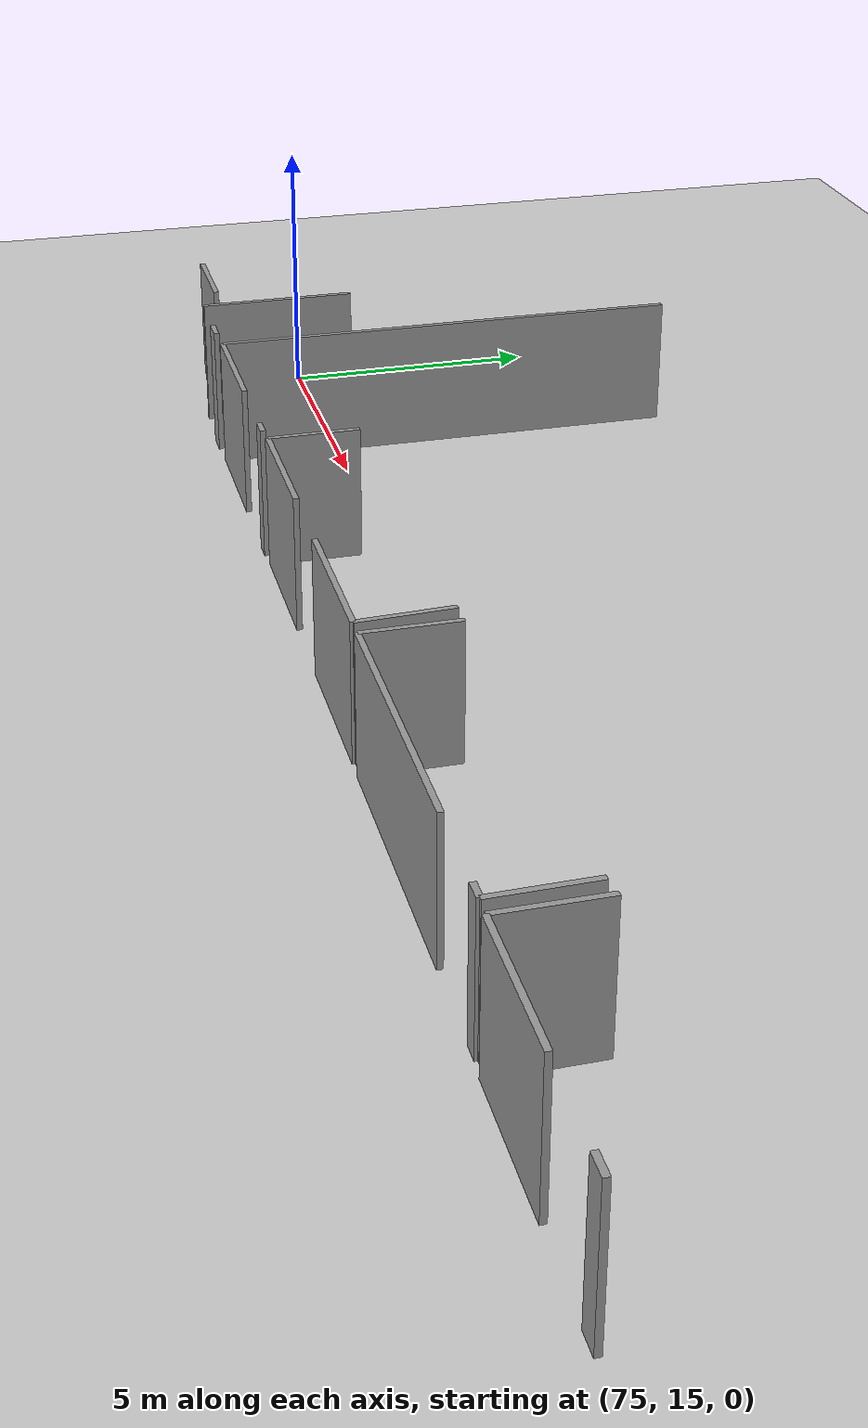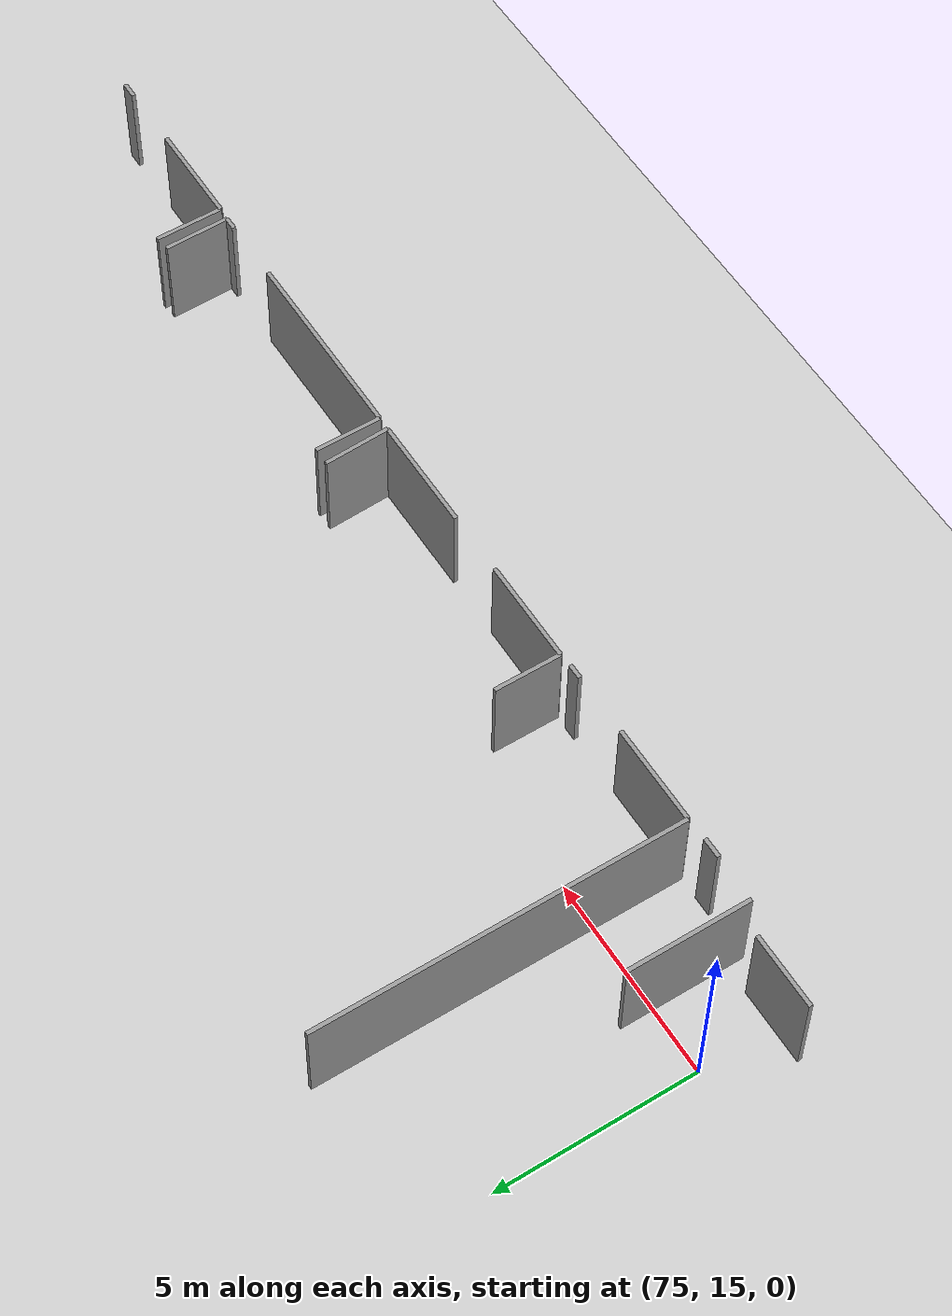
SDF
<sdf version="1.6">
 <world name="default">
  <model name="ground_plane">
   <static>1</static>
   <link name="link">
    <collision name="collision">
     <geometry><plane><normal>0 0 1</normal><size>100 100</size></plane></geometry>
     <surface><friction><ode><mu>100</mu><mu2>50</mu2></ode></friction></surface>
    </collision>
    <visual name="visual">
     <cast_shadows>0</cast_shadows>
     <geometry><plane><normal>0 0 1</normal><size>100 100</size></plane></geometry>
     <material>
      <script><uri>file://media/materials/scripts/gazebo.material</uri><name>Gazebo/Grey</name></script>
     </material>
    </visual>
   </link>
  </model>
  <model name="50010536_PLAN4">
   <static>1</static>
   <link name="Wall_265">
    <collision name="Wall_265_Collision">
     <geometry><box><size>1.84388788369 0.1 2.5</size></box></geometry>
     <pose>0.921943941847 0 1.25 0 0 0</pose>
    </collision>
    <visual name="Wall_265_Visual">
     <pose>0.921943941847 0 1.25 0 0 0</pose>
     <geometry><box><size>1.84388788369 0.1 2.5</size></box></geometry>
     <material>
      <script><uri>file://media/materials/scripts/gazebo.material</uri><name>Gazebo/Grey</name></script>
      <ambient>1 1 1 1</ambient>
     </material>
    </visual>
    <pose>178.473719963 -8.9317461829 0 0 0 3.14159265359</pose>
   </link>
   <link name="Wall_310">
    <collision name="Wall_310_Collision">
     <geometry><box><size>0.363140018411 0.1 2.5</size></box></geometry>
     <pose>0.181570009205 0 1.25 0 0 0</pose>
    </collision>
    <visual name="Wall_310_Visual">
     <pose>0.181570009205 0 1.25 0 0 0</pose>
     <geometry><box><size>0.363140018411 0.1 2.5</size></box></geometry>
     <material>
      <script><uri>file://media/materials/scripts/gazebo.material</uri><name>Gazebo/Grey</name></script>
      <ambient>1 1 1 1</ambient>
     </material>
    </visual>
    <pose>185.777151382 -9.28020823414 0 0 0 3.14159265359</pose>
   </link>
   <link name="Wall_311">
    <collision name="Wall_311_Collision">
     <geometry><box><size>2.47138367774 0.1 2.5</size></box></geometry>
     <pose>1.23569183887 0 1.25 0 0 0</pose>
    </collision>
    <visual name="Wall_311_Visual">
     <pose>1.23569183887 0 1.25 0 0 0</pose>
     <geometry><box><size>2.47138367774 0.1 2.5</size></box></geometry>
     <material>
      <script><uri>file://media/materials/scripts/gazebo.material</uri><name>Gazebo/Grey</name></script>
      <ambient>1 1 1 1</ambient>
     </material>
    </visual>
    <pose>183.875110307 -9.28020823414 0 0 0 3.14159265359</pose>
   </link>
   <link name="Wall_312">
    <collision name="Wall_312_Collision">
     <geometry><box><size>9.08975018252 0.1 2.5</size></box></geometry>
     <pose>4.54487509126 0 1.25 0 0 0</pose>
    </collision>
    <visual name="Wall_312_Visual">
     <pose>4.54487509126 0 1.25 0 0 0</pose>
     <geometry><box><size>9.08975018252 0.1 2.5</size></box></geometry>
     <material>
      <script><uri>file://media/materials/scripts/gazebo.material</uri><name>Gazebo/Grey</name></script>
      <ambient>1 1 1 1</ambient>
     </material>
    </visual>
    <pose>181.403726629 -9.28020823414 0 0 0 1.57079632679</pose>
   </link>
   <link name="Wall_315">
    <collision name="Wall_315_Collision">
     <geometry><box><size>2.83858680126 0.1 2.5</size></box></geometry>
     <pose>1.41929340063 0 1.25 0 0 0</pose>
    </collision>
    <visual name="Wall_315_Visual">
     <pose>1.41929340063 0 1.25 0 0 0</pose>
     <geometry><box><size>2.83858680126 0.1 2.5</size></box></geometry>
     <material>
      <script><uri>file://media/materials/scripts/gazebo.material</uri><name>Gazebo/Grey</name></script>
      <ambient>1 1 1 1</ambient>
     </material>
    </visual>
    <pose>193.075249976 -9.24970955147 0 0 0 3.14159265359</pose>
   </link>
   <link name="Wall_316">
    <collision name="Wall_316_Collision">
     <geometry><box><size>2.57550074596 0.1 2.5</size></box></geometry>
     <pose>1.28775037298 0 1.25 0 0 0</pose>
    </collision>
    <visual name="Wall_316_Visual">
     <pose>1.28775037298 0 1.25 0 0 0</pose>
     <geometry><box><size>2.57550074596 0.1 2.5</size></box></geometry>
     <material>
      <script><uri>file://media/materials/scripts/gazebo.material</uri><name>Gazebo/Grey</name></script>
      <ambient>1 1 1 1</ambient>
     </material>
    </visual>
    <pose>188.686588579 -9.24970955147 0 0 0 3.14159265359</pose>
   </link>
   <link name="Wall_317">
    <collision name="Wall_317_Collision">
     <geometry><box><size>1.66069263245 0.1 2.5</size></box></geometry>
     <pose>0.830346316224 0 1.25 0 0 0</pose>
    </collision>
    <visual name="Wall_317_Visual">
     <pose>0.830346316224 0 1.25 0 0 0</pose>
     <geometry><box><size>1.66069263245 0.1 2.5</size></box></geometry>
     <material>
      <script><uri>file://media/materials/scripts/gazebo.material</uri><name>Gazebo/Grey</name></script>
      <ambient>1 1 1 1</ambient>
     </material>
    </visual>
    <pose>186.111087833 -9.24970955147 0 0 0 1.57079632679</pose>
   </link>
   <link name="Wall_323">
    <collision name="Wall_323_Collision">
     <geometry><box><size>1.63801634972 0.1 2.5</size></box></geometry>
     <pose>0.819008174861 0 1.25 0 0 0</pose>
    </collision>
    <visual name="Wall_323_Visual">
     <pose>0.819008174861 0 1.25 0 0 0</pose>
     <geometry><box><size>1.63801634972 0.1 2.5</size></box></geometry>
     <material>
      <script><uri>file://media/materials/scripts/gazebo.material</uri><name>Gazebo/Grey</name></script>
      <ambient>1 1 1 1</ambient>
     </material>
    </visual>
    <pose>193.00059042 -7.61339554963 0 0 0 -1.52520128074</pose>
   </link>
   <link name="Wall_324">
    <collision name="Wall_324_Collision">
     <geometry><box><size>0.328349680983 0.1 2.5</size></box></geometry>
     <pose>0.164174840491 0 1.25 0 0 0</pose>
    </collision>
    <visual name="Wall_324_Visual">
     <pose>0.164174840491 0 1.25 0 0 0</pose>
     <geometry><box><size>0.328349680983 0.1 2.5</size></box></geometry>
     <material>
      <script><uri>file://media/materials/scripts/gazebo.material</uri><name>Gazebo/Grey</name></script>
      <ambient>1 1 1 1</ambient>
     </material>
    </visual>
    <pose>200.175780084 -9.25557565946 0 0 0 3.14159265359</pose>
   </link>
   <link name="Wall_325">
    <collision name="Wall_325_Collision">
     <geometry><box><size>4.8734406247 0.1 2.5</size></box></geometry>
     <pose>2.43672031235 0 1.25 0 0 0</pose>
    </collision>
    <visual name="Wall_325_Visual">
     <pose>2.43672031235 0 1.25 0 0 0</pose>
     <geometry><box><size>4.8734406247 0.1 2.5</size></box></geometry>
     <material>
      <script><uri>file://media/materials/scripts/gazebo.material</uri><name>Gazebo/Grey</name></script>
      <ambient>1 1 1 1</ambient>
     </material>
    </visual>
    <pose>198.294562423 -9.25557565946 0 0 0 3.14159265359</pose>
   </link>
   <link name="Wall_326">
    <collision name="Wall_326_Collision">
     <geometry><box><size>1.6413167 0.1 2.5</size></box></geometry>
     <pose>0.820658349998 0 1.25 0 0 0</pose>
    </collision>
    <visual name="Wall_326_Visual">
     <pose>0.820658349998 0 1.25 0 0 0</pose>
     <geometry><box><size>1.6413167 0.1 2.5</size></box></geometry>
     <material>
      <script><uri>file://media/materials/scripts/gazebo.material</uri><name>Gazebo/Grey</name></script>
      <ambient>1 1 1 1</ambient>
     </material>
    </visual>
    <pose>193.421121798 -9.25557565946 0 0 0 1.57079632679</pose>
   </link>
   <link name="Wall_332">
    <collision name="Wall_332_Collision">
     <geometry><box><size>1.61616755762 0.1 2.5</size></box></geometry>
     <pose>0.808083778811 0 1.25 0 0 0</pose>
    </collision>
    <visual name="Wall_332_Visual">
     <pose>0.808083778811 0 1.25 0 0 0</pose>
     <geometry><box><size>1.61616755762 0.1 2.5</size></box></geometry>
     <material>
      <script><uri>file://media/materials/scripts/gazebo.material</uri><name>Gazebo/Grey</name></script>
      <ambient>1 1 1 1</ambient>
     </material>
    </visual>
    <pose>200.156226391 -7.63952639431 0 0 0 -1.55869722835</pose>
   </link>
   <link name="Wall_333">
    <collision name="Wall_333_Collision">
     <geometry><box><size>0.406564454179 0.1 2.5</size></box></geometry>
     <pose>0.203282227089 0 1.25 0 0 0</pose>
    </collision>
    <visual name="Wall_333_Visual">
     <pose>0.203282227089 0 1.25 0 0 0</pose>
     <geometry><box><size>0.406564454179 0.1 2.5</size></box></geometry>
     <material>
      <script><uri>file://media/materials/scripts/gazebo.material</uri><name>Gazebo/Grey</name></script>
      <ambient>1 1 1 1</ambient>
     </material>
    </visual>
    <pose>205.044141828 -9.28020823414 0 0 0 3.14159265359</pose>
   </link>
   <link name="Wall_334">
    <collision name="Wall_334_Collision">
     <geometry><box><size>2.55874043742 0.1 2.5</size></box></geometry>
     <pose>1.27937021871 0 1.25 0 0 0</pose>
    </collision>
    <visual name="Wall_334_Visual">
     <pose>1.27937021871 0 1.25 0 0 0</pose>
     <geometry><box><size>2.55874043742 0.1 2.5</size></box></geometry>
     <material>
      <script><uri>file://media/materials/scripts/gazebo.material</uri><name>Gazebo/Grey</name></script>
      <ambient>1 1 1 1</ambient>
     </material>
    </visual>
    <pose>203.063632035 -9.28020823414 0 0 0 3.14159265359</pose>
   </link>
   <link name="Wall_335">
    <collision name="Wall_335_Collision">
     <geometry><box><size>1.68344602101 0.1 2.5</size></box></geometry>
     <pose>0.841723010507 0 1.25 0 0 0</pose>
    </collision>
    <visual name="Wall_335_Visual">
     <pose>0.841723010507 0 1.25 0 0 0</pose>
     <geometry><box><size>1.68344602101 0.1 2.5</size></box></geometry>
     <material>
      <script><uri>file://media/materials/scripts/gazebo.material</uri><name>Gazebo/Grey</name></script>
      <ambient>1 1 1 1</ambient>
     </material>
    </visual>
    <pose>200.504891598 -9.28020823414 0 0 0 1.57079632679</pose>
   </link>
   <link name="Wall_340">
    <collision name="Wall_340_Collision">
     <geometry><box><size>0.493667269784 0.1 2.5</size></box></geometry>
     <pose>0.246833634892 0 1.25 0 0 0</pose>
    </collision>
    <visual name="Wall_340_Visual">
     <pose>0.246833634892 0 1.25 0 0 0</pose>
     <geometry><box><size>0.493667269784 0.1 2.5</size></box></geometry>
     <material>
      <script><uri>file://media/materials/scripts/gazebo.material</uri><name>Gazebo/Grey</name></script>
      <ambient>1 1 1 1</ambient>
     </material>
    </visual>
    <pose>180.840478685 -9.3092340412 0 0 0 3.14159265359</pose>
   </link>
   <link name="Wall_341">
    <collision name="Wall_341_Collision">
     <geometry><box><size>3.06358124623 0.1 2.5</size></box></geometry>
     <pose>1.53179062312 0 1.25 0 0 0</pose>
    </collision>
    <visual name="Wall_341_Visual">
     <pose>1.53179062312 0 1.25 0 0 0</pose>
     <geometry><box><size>3.06358124623 0.1 2.5</size></box></geometry>
     <material>
      <script><uri>file://media/materials/scripts/gazebo.material</uri><name>Gazebo/Grey</name></script>
      <ambient>1 1 1 1</ambient>
     </material>
    </visual>
    <pose>179.199746056 -9.3092340412 0 0 0 1.57079632679</pose>
   </link>
   <pose>-102.5 22.0619893343 0 0 0 0</pose>
  </model>
 </world>
</sdf>
